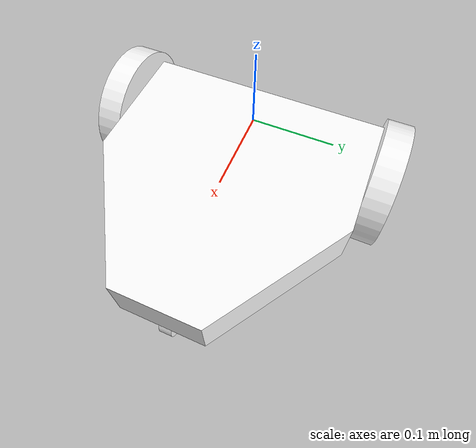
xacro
<?xml version="1.0"?>
<robot name="car" xmlns:xacro="http://ros.org/wiki/xacro">
  <xacro:property name="baseplate_wide" value="0.3" />
  <xacro:property name="axis_offset" value="0.04" />
  <xacro:property name="high_offset" value="0.115" />

  <material name="white">
    <color rgba="1.0 1.0 1.0 1.0"/>
  </material>

  <gazebo>
    <plugin name="gazebo_ros_control" filename="libgazebo_ros_control.so">
      <robotNamespace>/car</robotNamespace>
      <robotSimType>gazebo_ros_control/DefaultRobotHWSim</robotSimType>
      <legacyModeNS>true</legacyModeNS>
    </plugin>
  </gazebo>

  <link name="baseplate">
    <visual>
      <geometry>
        <mesh filename="package://car_description/meshes/baseplate.STL" />
      </geometry>
      <origin xyz="0 0 0" rpy="0 0 0"/>
      <material name="white"/>
    </visual>
    <collision>
      <geometry>
        <mesh filename="package://car_description/meshes/baseplate.STL" />
      </geometry>
      <origin xyz="0 0 0" rpy="0 0 0"/>
    </collision>
    <inertial>
      <mass value="1.0"/>
      <origin xyz="0.08 0 -0.03" rpy="0 0 0"/>
      <inertia ixx="0.001" ixy="0.0" ixz="0.0" iyy="0.001" iyz="0.0" izz="0.001"/>
    </inertial>
  </link>
  <gazebo reference="baseplate">
    <material>Gazebo/Red</material>
  </gazebo>

  <joint name="joint1" type="continuous">
    <origin xyz="0 ${-baseplate_wide/2} ${-axis_offset}" rpy="0 0 0"/>
    <axis xyz="0 1 0"/>
    <parent link="baseplate"/>
    <child link="wheel1"/>
    <dynamics damping="0.1"/>
    <limit velocity="12.0" effort="0.4" />
  </joint>
  <transmission name="joint1_trans">
    <type>transmission_interface/SimpleTransmission</type>
    <joint name="joint1">
      <hardwareInterface>hardware_interface/VelocityJointInterface </hardwareInterface>
    </joint>
    <actuator name="joint1_motor">
       <hardwareInterface>hardware_interface/VelocityJointInterface </hardwareInterface>
       <mechanismReduction>1</mechanismReduction>
    </actuator>
  </transmission>

  <link name="wheel1">
    <visual>
      <geometry>
        <mesh filename="package://car_description/meshes/wheel1.STL" />
      </geometry>
      <origin xyz="0 ${baseplate_wide/2} ${axis_offset}" rpy="0 0 0"/>
      <material name="white"/>
    </visual>
    <collision>
      <geometry>
        <mesh filename="package://car_description/meshes/wheel1.STL" />
      </geometry>
      <origin xyz="0 ${baseplate_wide/2} ${axis_offset}" rpy="0 0 0"/>
    </collision>
    <inertial>
      <mass value="0.1"/>
      <origin xyz="0 -0.015 0" rpy="0 0 0"/>
      <inertia ixx="0.0001" ixy="0.0" ixz="0.0" iyy="0.0001" iyz="0.0" izz="0.0001"/>
    </inertial>
  </link>
  <gazebo reference="wheel1">
    <material>Gazebo/Red</material>
    <mu1 value="2.5" />
    <mu2 value="2.5" />
    <kp value="50000" />
    <kd value="10" />
  </gazebo>

  <joint name="joint2" type="continuous">
    <origin xyz="0 ${baseplate_wide/2} ${-axis_offset}" rpy="0 0 0"/>
    <axis xyz="0 1 0"/>
    <parent link="baseplate"/>
    <child link="wheel2"/>
    <dynamics damping="0.1"/>
    <limit velocity="12.0" effort="0.4" />
  </joint>
  <transmission name="joint2_trans">
    <type>transmission_interface/SimpleTransmission</type>
    <joint name="joint2">
      <hardwareInterface>hardware_interface/VelocityJointInterface </hardwareInterface>
    </joint>
    <actuator name="joint2_motor">
       <hardwareInterface>hardware_interface/VelocityJointInterface </hardwareInterface>
       <mechanismReduction>1</mechanismReduction>
    </actuator>
  </transmission>

  <link name="wheel2">
    <visual>
      <geometry>
        <mesh filename="package://car_description/meshes/wheel2.STL" />
      </geometry>
      <origin xyz="0 ${-baseplate_wide/2} ${axis_offset}" rpy="0 0 0"/>
      <material name="white"/>
    </visual>
    <collision>
      <geometry>
        <mesh filename="package://car_description/meshes/wheel2.STL" />
      </geometry>
      <origin xyz="0 ${-baseplate_wide/2} ${axis_offset}" rpy="0 0 0"/>
    </collision>
    <inertial>
      <mass value="0.1"/>
      <origin xyz="0 0.015 0" rpy="0 0 0"/>
      <inertia ixx="0.0001" ixy="0.0" ixz="0.0" iyy="0.0001" iyz="0.0" izz="0.0001"/>
    </inertial>
  </link>
  <gazebo reference="wheel2">
    <material>Gazebo/Red</material>
    <mu1 value="2.5" />
    <mu2 value="2.5" />
    <kp value="50000" />
    <kd value="10" />
  </gazebo>

  <joint name="joint3" type="continuous">
    <origin xyz="0.2225 0 -0.0875" rpy="0 0 0"/>
    <axis xyz="0 1 0"/>
    <parent link="baseplate"/>
    <child link="support"/>
    <dynamics damping="0.1"/>
    <limit velocity="12.0" effort="0.4" />
  </joint>
  <transmission name="joint3_trans">
    <type>transmission_interface/SimpleTransmission</type>
    <joint name="joint3">
      <hardwareInterface>hardware_interface/VelocityJointInterface </hardwareInterface>
    </joint>
    <actuator name="joint3_motor">
       <hardwareInterface>hardware_interface/VelocityJointInterface </hardwareInterface>
       <mechanismReduction>1</mechanismReduction>
    </actuator>
  </transmission>

  <link name="support">
    <visual>
      <geometry>
        <mesh filename="package://car_description/meshes/support.STL" />
      </geometry>
      <origin xyz="-0.2225 0 0.0875" rpy="0 0 0"/>
      <material name="white"/>
    </visual>
    <collision>
      <geometry>
        <mesh filename="package://car_description/meshes/support.STL" />
      </geometry>
      <origin xyz="-0.2225 0 0.0875" rpy="0 0 0"/>
    </collision>
    <inertial>
      <mass value="1.8"/>
      <origin xyz="0 0 0" rpy="0 0 0"/>
      <inertia ixx="0.000785" ixy="0" ixz="0" iyy="0.001491" iyz="0" izz="0.000785"/>
    </inertial>
  </link>
  <gazebo reference="support">
    <material>Gazebo/Red</material>
    <mu1 value="0.1" />
    <mu2 value="0.1" />
  </gazebo>
</robot>
